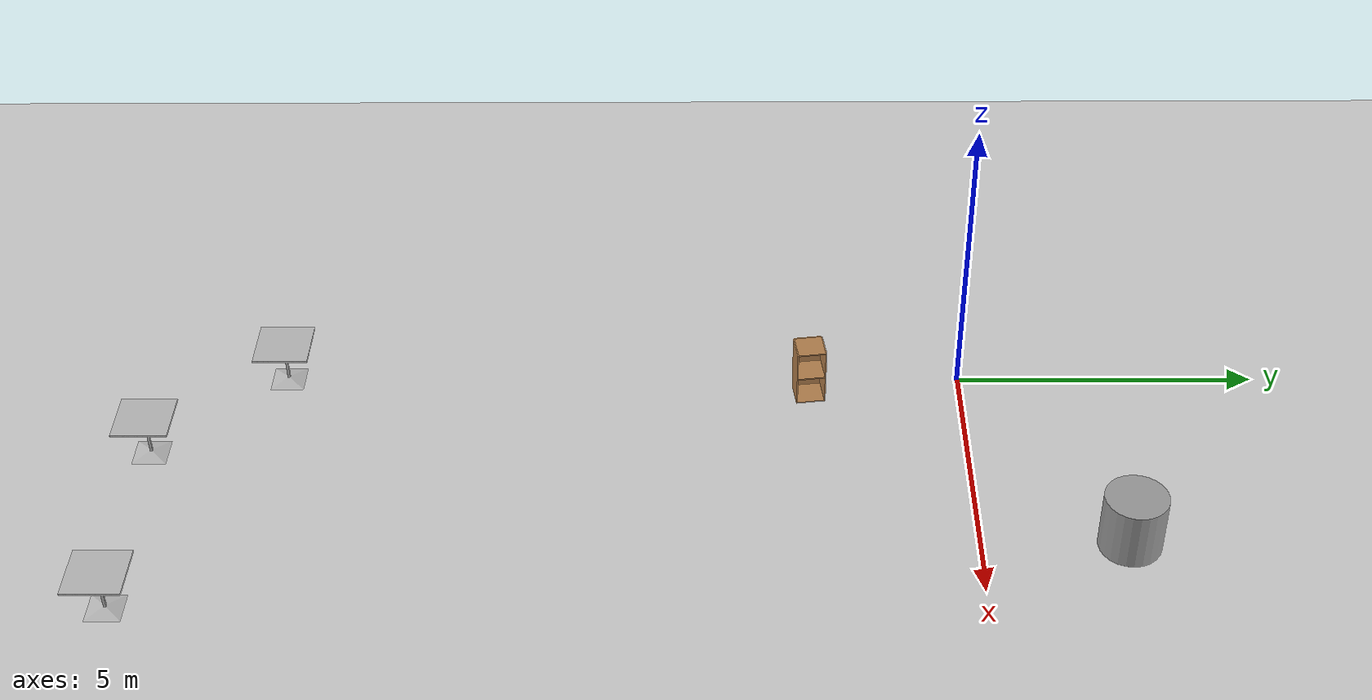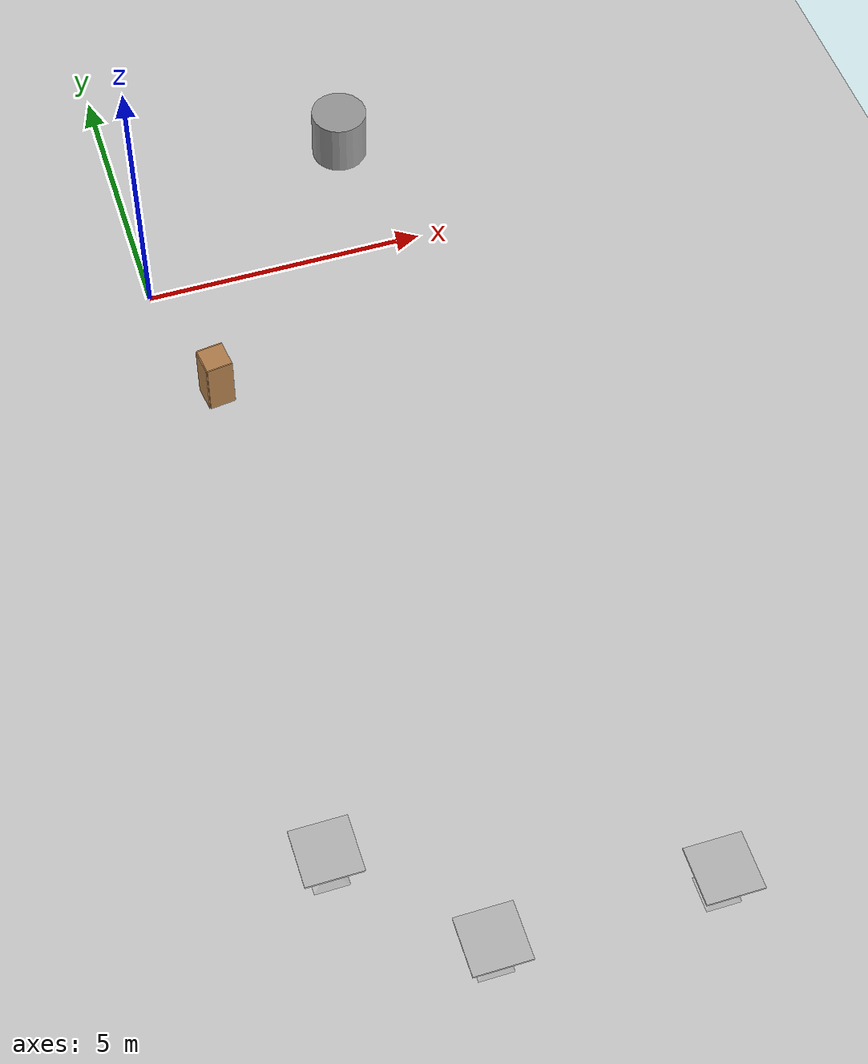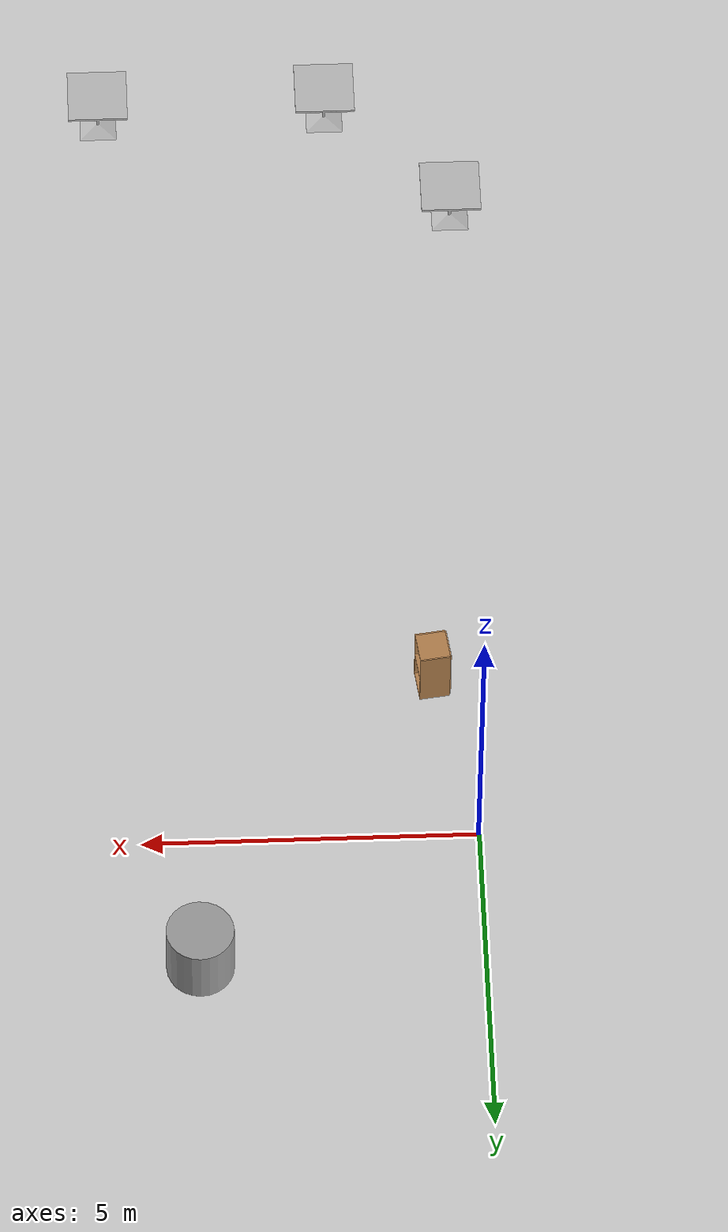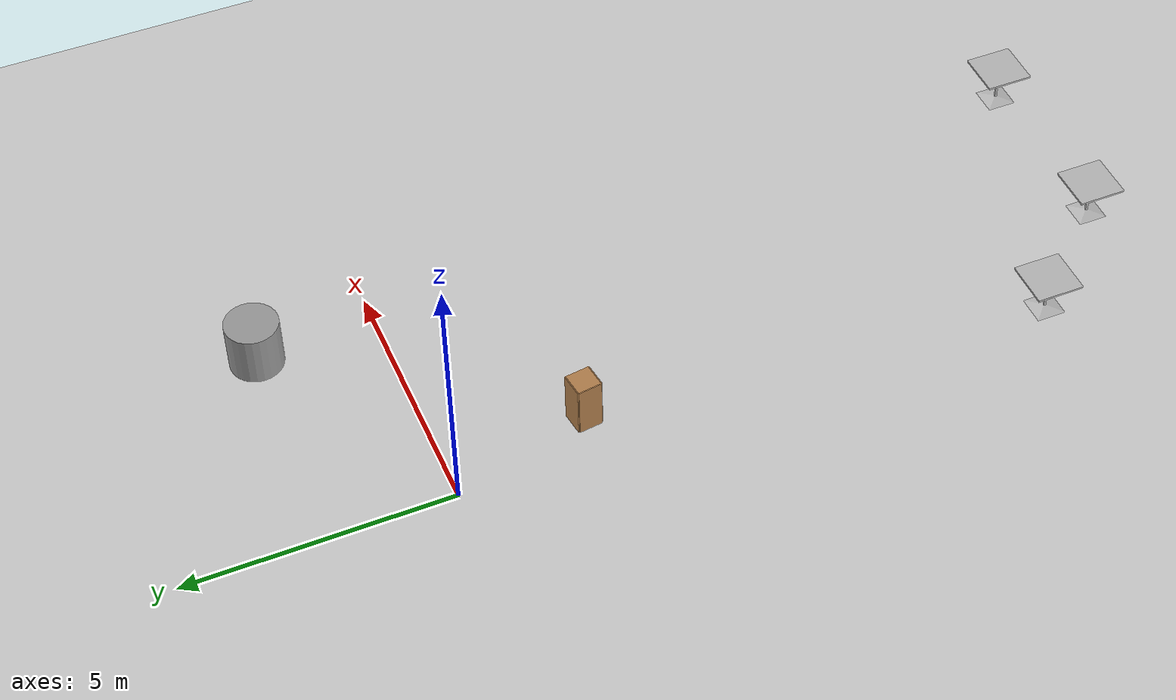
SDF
<sdf version="1.7">
 <world name="default">
  <light name="sun" type="directional">
   <pose>0 0 10 0 -0 0</pose>
   <diffuse>0.8 0.8 0.8 1</diffuse>
   <specular>0.2 0.2 0.2 1</specular>
   <attenuation>
    <range>1000</range>
    <constant>0.9</constant>
    <linear>0.01</linear>
    <quadratic>0.001</quadratic>
   </attenuation>
   <direction>-0.5 0.1 -0.9</direction>
   <spot><inner_angle>0</inner_angle><outer_angle>0</outer_angle><falloff>0</falloff></spot>
  </light>
  <model name="ground_plane">
   <static>1</static>
   <link name="link">
    <collision name="collision">
     <geometry><plane><normal>0 0 1</normal><size>100 100</size></plane></geometry>
     <surface>
      <contact><collide_bitmask>65535</collide_bitmask></contact>
      <friction><ode><mu>100</mu><mu2>50</mu2></ode></friction>
     </surface>
    </collision>
    <visual name="visual">
     <cast_shadows>0</cast_shadows>
     <geometry><plane><normal>0 0 1</normal><size>100 100</size></plane></geometry>
     <material>
      <script><uri>file://media/materials/scripts/gazebo.material</uri><name>Gazebo/Grey</name></script>
     </material>
    </visual>
   </link>
  </model>
  <gravity>0 0 -9.8</gravity>
  <magnetic_field>6e-06 2.3e-05 -4.2e-05</magnetic_field>
  <atmosphere type="adiabatic"/>
  <physics type="ode">
   <max_step_size>0.001</max_step_size>
   <real_time_factor>1</real_time_factor>
   <real_time_update_rate>1000</real_time_update_rate>
  </physics>
  <scene><ambient>0.4 0.4 0.4 1</ambient><background>0.7 0.7 0.7 1</background><shadows>1</shadows></scene>
  <spherical_coordinates>
   <surface_model>EARTH_WGS84</surface_model>
   <latitude_deg>0</latitude_deg>
   <longitude_deg>0</longitude_deg>
   <elevation>0</elevation>
   <heading_deg>0</heading_deg>
  </spherical_coordinates>
  <model name="cafe_table">
   <static>1</static>
   <link name="link">
    <collision name="surface">
     <pose>0 0 0.755 0 -0 0</pose>
     <geometry><box><size>0.913 0.913 0.04</size></box></geometry>
    </collision>
    <collision name="column">
     <pose>0 0 0.37 0 -0 0</pose>
     <geometry><box><size>0.042 0.042 0.74</size></box></geometry>
    </collision>
    <collision name="base">
     <pose>0 0 0.02 0 -0 0</pose>
     <geometry><box><size>0.56 0.56 0.04</size></box></geometry>
    </collision>
    <visual name="visual">
     <geometry><mesh><uri>model://cafe_table/meshes/cafe_table.dae</uri></mesh></geometry>
    </visual>
   </link>
   <pose>1.77961 -13.3858 0 0 -0 0</pose>
  </model>
  <model name="cafe_table_0">
   <static>1</static>
   <link name="link">
    <collision name="surface">
     <pose>0 0 0.755 0 -0 0</pose>
     <geometry><box><size>0.913 0.913 0.04</size></box></geometry>
    </collision>
    <collision name="column">
     <pose>0 0 0.37 0 -0 0</pose>
     <geometry><box><size>0.042 0.042 0.74</size></box></geometry>
    </collision>
    <collision name="base">
     <pose>0 0 0.02 0 -0 0</pose>
     <geometry><box><size>0.56 0.56 0.04</size></box></geometry>
    </collision>
    <visual name="visual">
     <geometry><mesh><uri>model://cafe_table/meshes/cafe_table.dae</uri></mesh></geometry>
    </visual>
   </link>
   <pose>5.29791 -13.355 0 0 -0 0</pose>
  </model>
  <model name="cabinet">
   <static>1</static>
   <link name="cabinet_bottom_plate">
    <inertial>
     <pose>0 0 -1 0 -0 0</pose>
     <inertia><ixx>2.05</ixx><ixy>0</ixy><ixz>0</ixz><iyy>2.05</iyy><iyz>0</iyz><izz>2.05</izz></inertia>
     <mass>25</mass>
    </inertial>
    <collision name="cabinet_bottom_plate_geom">
     <pose>0 0 0.01 0 -0 0</pose>
     <geometry><box><size>0.45 0.45 0.02</size></box></geometry>
    </collision>
    <visual name="cabinet_bottom_plate_geom_visual">
     <pose>0 0 0.01 0 -0 0</pose>
     <geometry><box><size>0.45 0.45 0.02</size></box></geometry>
     <material>
      <script><uri>file://media/materials/scripts/gazebo.material</uri><name>Gazebo/Wood</name></script>
     </material>
    </visual>
    <collision name="cabinet_bottom_plate_geom_cabinet_back_plate">
     <pose>0.235 0 0.51 0 -0 0</pose>
     <geometry><box><size>0.02 0.45 1.02</size></box></geometry>
    </collision>
    <visual name="cabinet_bottom_plate_geom_cabinet_back_plate_visual">
     <pose>0.235 0 0.51 0 -0 0</pose>
     <geometry><box><size>0.02 0.45 1.02</size></box></geometry>
     <material>
      <script><uri>file://media/materials/scripts/gazebo.material</uri><name>Gazebo/Wood</name></script>
     </material>
    </visual>
    <collision name="cabinet_bottom_plate_geom_cabinet_left_plate">
     <pose>0 0.235 0.51 0 -0 0</pose>
     <geometry><box><size>0.45 0.02 1.02</size></box></geometry>
    </collision>
    <visual name="cabinet_bottom_plate_geom_cabinet_left_plate_visual">
     <pose>0 0.235 0.51 0 -0 0</pose>
     <geometry><box><size>0.45 0.02 1.02</size></box></geometry>
     <material>
      <script><uri>file://media/materials/scripts/gazebo.material</uri><name>Gazebo/Wood</name></script>
     </material>
    </visual>
    <collision name="cabinet_bottom_plate_geom_cabinet_middle_plate">
     <pose>0 0 0.51 0 -0 0</pose>
     <geometry><box><size>0.45 0.45 0.02</size></box></geometry>
    </collision>
    <visual name="cabinet_bottom_plate_geom_cabinet_middle_plate_visual">
     <pose>0 0 0.51 0 -0 0</pose>
     <geometry><box><size>0.45 0.45 0.02</size></box></geometry>
     <material>
      <script><uri>file://media/materials/scripts/gazebo.material</uri><name>Gazebo/Wood</name></script>
     </material>
    </visual>
    <collision name="cabinet_bottom_plate_geom_cabinet_right_plate">
     <pose>0 -0.235 0.51 0 -0 0</pose>
     <geometry><box><size>0.45 0.02 1.02</size></box></geometry>
    </collision>
    <visual name="cabinet_bottom_plate_geom_cabinet_right_plate_visual">
     <pose>0 -0.235 0.51 0 -0 0</pose>
     <geometry><box><size>0.45 0.02 1.02</size></box></geometry>
     <material>
      <script><uri>file://media/materials/scripts/gazebo.material</uri><name>Gazebo/Wood</name></script>
     </material>
    </visual>
    <collision name="cabinet_bottom_plate_geom_cabinet_top_plate">
     <pose>0 0 1.01 0 -0 0</pose>
     <geometry><box><size>0.45 0.45 0.02</size></box></geometry>
    </collision>
    <visual name="cabinet_bottom_plate_geom_cabinet_top_plate_visual">
     <pose>0 0 1.01 0 -0 0</pose>
     <geometry><box><size>0.45 0.45 0.02</size></box></geometry>
     <material>
      <script><uri>file://media/materials/scripts/gazebo.material</uri><name>Gazebo/Wood</name></script>
     </material>
    </visual>
   </link>
   <pose>0.584847 -2.56965 0.215528 0 0 -3.01192</pose>
  </model>
  <model name="cafe_table_1">
   <static>1</static>
   <link name="link">
    <collision name="surface">
     <pose>0 0 0.755 0 -0 0</pose>
     <geometry><box><size>0.913 0.913 0.04</size></box></geometry>
    </collision>
    <collision name="column">
     <pose>0 0 0.37 0 -0 0</pose>
     <geometry><box><size>0.042 0.042 0.74</size></box></geometry>
    </collision>
    <collision name="base">
     <pose>0 0 0.02 0 -0 0</pose>
     <geometry><box><size>0.56 0.56 0.04</size></box></geometry>
    </collision>
    <visual name="visual">
     <geometry><mesh><uri>model://cafe_table/meshes/cafe_table.dae</uri></mesh></geometry>
    </visual>
   </link>
   <pose>-0.087631 -11.4221 0 0 -0 0</pose>
  </model>
  <model name="unit_cylinder">
   <pose>4.19068 2.28335 0.689803 -4e-06 -6e-06 -2.5e-05</pose>
   <link name="link">
    <inertial>
     <mass>1</mass>
     <inertia><ixx>0.145833</ixx><ixy>0</ixy><ixz>0</ixz><iyy>0.145833</iyy><iyz>0</iyz><izz>0.125</izz></inertia>
    </inertial>
    <collision name="collision">
     <geometry><cylinder><radius>0.5</radius><length>1</length></cylinder></geometry>
    </collision>
    <visual name="visual">
     <geometry><cylinder><radius>0.5</radius><length>1</length></cylinder></geometry>
     <material>
      <script><name>Gazebo/Grey</name><uri>file://media/materials/scripts/gazebo.material</uri></script>
     </material>
    </visual>
   </link>
  </model>
 </world>
</sdf>
